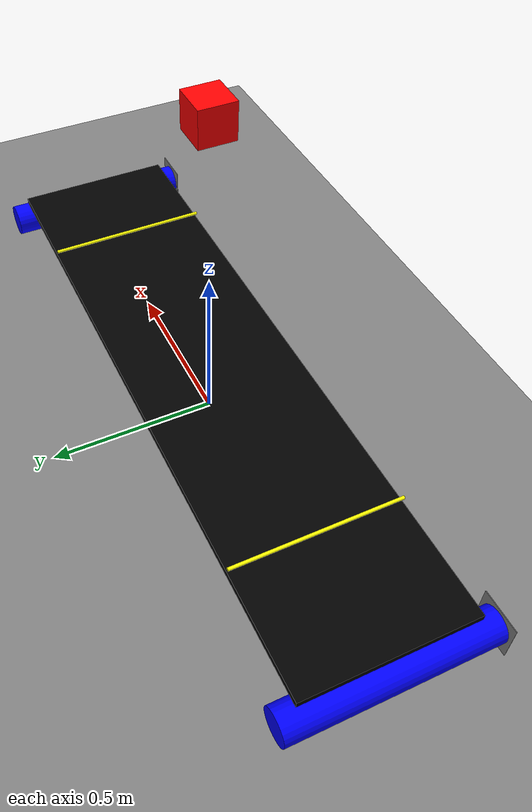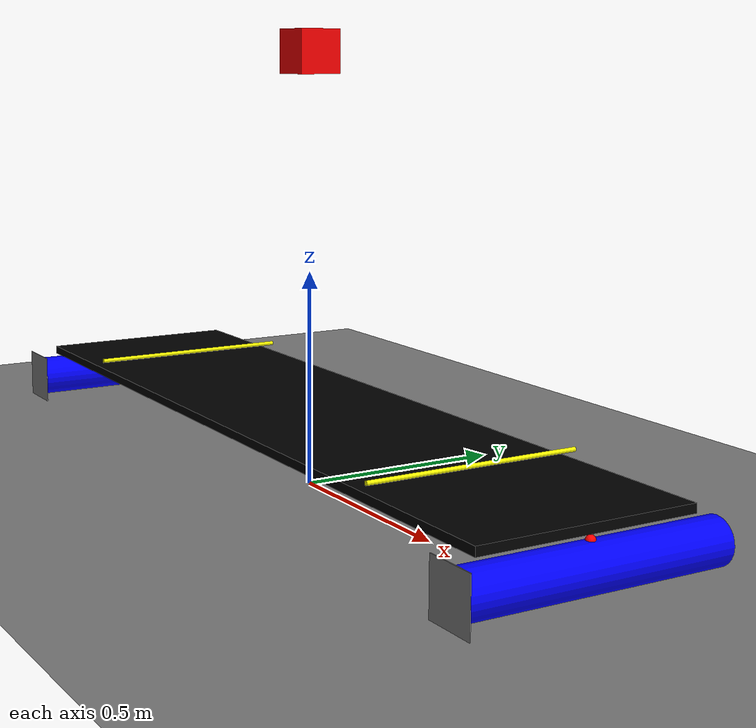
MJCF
<mujoco>
    <worldbody>
        <body>
            <geom type="plane" size="2 2 0.01" />
        </body>
    </worldbody>

    <worldbody>
        <body name="roller1" euler="90 0 0" pos="1 0 0.1" >
            <geom type="cylinder" size="0.05 0.3" rgba="0 0 1 1" />
            <joint name="roller1_joint" type="hinge" damping="0.01" />
            <geom type="box" size="0.06 0.06 0.001" pos="0 0 0.301" />
            <site name="site1" type="sphere" rgba="1 0 0 1" size="0.01" pos="0 0.05 0" />
        </body>

        <body name="roller2" euler="90 0 0" pos="-1 0 0.1" >
            <geom type="cylinder" size="0.05 0.3" rgba="0 0 1 1" />
            <joint name="roller2_joint" type="hinge" damping="0.01" />
            <geom type="box" size="0.06 0.06 0.001" pos="0 0 0.301" />
        </body>

        <body name="belt" pos="0 0 0.17" >
            <geom type="box" size="1 0.25 0.01" rgba="0 0 0 1" friction="0.001 0.005 0.001" />
            <site name="belt_motion_touch_sensor_site" type="box" size="1 0.25 0.01" rgba="0 0 0 0" />

            <body name="right_light_sensor" pos="0.65 0 0.03">
                <geom type="cylinder" size="0.005 0.25" euler="90 0 0" rgba="1 1 0 1" contype="0" conaffinity="0" />
            </body>

            <body name="left_light_sensor" pos="-0.65 0 0.03">
                <geom type="cylinder" size="0.005 0.25" euler="90 0 0" rgba="1 1 0 1" contype="0" conaffinity="0" />
            </body>
        </body>

    </worldbody>

    <worldbody>
        <body name="box" pos="0 0 1">
            <geom type="box" size="0.05 0.05 0.05" rgba="1 0 0 1" friction="0.001 0.005 0.001" mass="0.1" />
            <joint name="box_joint" type="free" damping="0.1" />
            <site name="box_site" type="box" size="0.05 0.05 0.05" rgba="1 0 0 1" />
        </body>
    </worldbody>

    <equality>
        <joint joint1="roller1_joint" joint2="roller2_joint" />
    </equality>

    <actuator>
        <velocity name="roller_vel" joint="roller1_joint" ctrlrange="-20 20" />
        <velocity name="box_vel" joint="box_joint" gear="1 0 0 0 0 0" ctrlrange="-20 20" />
    </actuator>

    <sensor>
        <velocimeter site="site1" />
        <touch site="belt_motion_touch_sensor_site"/>
        <normal body1="right_light_sensor" body2="box"  />
        <normal body1="left_light_sensor" body2="box"  />
    </sensor>

</mujoco>
